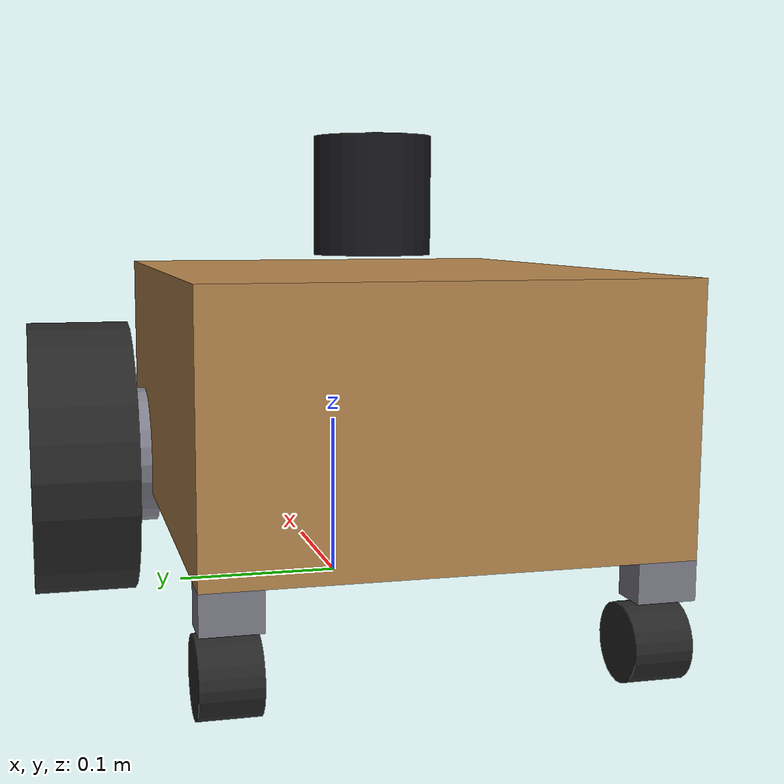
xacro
<?xml version="1.0"?>
<robot xmlns:xacro="http://www.ros.org/wiki/xacro" name="robo3">

  <xacro:arg name="sim" default="false"/>
  <xacro:arg name="controllers_yaml" default=""/>

  <!-- ==================== NÚMEROS AJUSTÁVEIS ==================== -->

  <xacro:property name="caixa_x"     value="0.311"/>
  <xacro:property name="caixa_y"     value="0.240"/>
  <!-- 13,5 confirmado em 17-09 (o dono deu "±14" e fechou em 13,5). -->
  <xacro:property name="caixa_z"     value="0.135"/>
  <xacro:property name="altura_solo" value="0.065"/>

  <xacro:property name="roda_raio"      value="0.0825"/>
  <xacro:property name="roda_largura"   value="0.060"/>
  <xacro:property name="roda_cubo"      value="0.015"/>
  <xacro:property name="roda_separacao" value="0.320"/>

  <xacro:property name="caixa_cx" value="${roda_raio - 0.020 - caixa_x/2}"/>

  <xacro:property name="boba_raio"  value="0.020"/>
  <xacro:property name="boba_trail" value="0.020"/>
  <xacro:property name="boba_largura" value="0.03"/>
  <xacro:property name="boba_x"     value="${caixa_cx - caixa_x/2}"/>
  <xacro:property name="boba_y"     value="${caixa_y/2 - boba_largura/2}"/>

  <xacro:property name="massa_chassi" value="3.0"/>
  <xacro:property name="massa_roda"   value="3.1"/>
  <xacro:property name="massa_garfo"  value="0.05"/>
  <xacro:property name="massa_boba"   value="0.05"/>

  <xacro:property name="boba_pivo_atrito"    value="0.05"/>
  <xacro:property name="boba_pivo_damping"   value="0.02"/>

  <xacro:property name="livox_z_solo" value="0.24"/>
  <xacro:property name="livox_x"      value="${caixa_cx}"/>
  <xacro:property name="livox_yaw"    value="0.0"/>

  <!-- ==================== DERIVADOS (não editar) ==================== -->
  <xacro:property name="caixa_cz"    value="${altura_solo + caixa_z/2}"/>
  <xacro:property name="boba_pivo_z" value="${altura_solo}"/>
  <xacro:property name="livox_z"     value="${livox_z_solo}"/>

  <xacro:macro name="inercia_caixa" params="m x y z ox:=0 oy:=0 oz:=0">
    <inertial>
      <origin xyz="${ox} ${oy} ${oz}"/>
      <mass value="${m}"/>
      <inertia ixx="${m*(y*y+z*z)/12}" iyy="${m*(x*x+z*z)/12}" izz="${m*(x*x+y*y)/12}"
               ixy="0" ixz="0" iyz="0"/>
    </inertial>
  </xacro:macro>

  <xacro:macro name="inercia_roda" params="m r h">
    <inertial>
      <mass value="${m}"/>
      <inertia ixx="${m*(3*r*r+h*h)/12}" iyy="${m*r*r/2}" izz="${m*(3*r*r+h*h)/12}"
               ixy="0" ixz="0" iyz="0"/>
    </inertial>
  </xacro:macro>

  <!-- ==================== CHASSI ====================
       A caixa não está centrada na origem: ela fica ADIANTE do eixo, porque a
       origem é o eixo (C8). `caixa_cx` = +0,093. -->

  <link name="base_link">
    <visual>
      <origin xyz="${caixa_cx} 0 ${caixa_cz}"/>
      <geometry><box size="${caixa_x} ${caixa_y} ${caixa_z}"/></geometry>
      <material name="madeira"><color rgba="0.72 0.53 0.30 1"/></material>
    </visual>
    <collision>
      <origin xyz="${caixa_cx} 0 ${caixa_cz}"/>
      <geometry><box size="${caixa_x} ${caixa_y} ${caixa_z}"/></geometry>
    </collision>
    <xacro:inercia_caixa m="${massa_chassi}" x="${caixa_x}" y="${caixa_y}" z="${caixa_z}"
                         ox="${caixa_cx}" oz="${caixa_cz}"/>
  </link>

  <xacro:macro name="roda_motriz" params="lado reflect">
    <link name="${lado}_wheel">
      <visual>
        <origin rpy="${pi/2} 0 0"/>
        <geometry><cylinder radius="${roda_raio}" length="${roda_largura}"/></geometry>
        <material name="borracha"><color rgba="0.15 0.15 0.15 1"/></material>
      </visual>
      <collision>
        <origin rpy="${pi/2} 0 0"/>
        <geometry><cylinder radius="${roda_raio}" length="${roda_largura}"/></geometry>
      </collision>
      <!-- O cubo: liga a roda à lateral da caixa. Só visual — quem toca o chão
           é o pneu, e dar colisão a ele criaria contato lateral que não existe. -->
      <visual>
        <origin xyz="0 ${-reflect*(roda_largura+roda_cubo)/2} 0" rpy="${pi/2} 0 0"/>
        <geometry><cylinder radius="${roda_raio/2}" length="${roda_cubo}"/></geometry>
        <material name="metal"><color rgba="0.5 0.5 0.55 1"/></material>
      </visual>
      <xacro:inercia_roda m="${massa_roda}" r="${roda_raio}" h="${roda_largura}"/>
    </link>

    <joint name="${lado}_wheel_joint" type="continuous">
      <parent link="base_link"/>
      <child link="${lado}_wheel"/>
      <origin xyz="0 ${reflect*roda_separacao/2} ${roda_raio}"/>
      <axis xyz="0 1 0"/>
    </joint>
  </xacro:macro>

  <xacro:roda_motriz lado="left"  reflect="1"/>
  <xacro:roda_motriz lado="right" reflect="-1"/>

  <xacro:macro name="roda_boba" params="lado reflect">
    <link name="${lado}_caster_fork">
      <visual>
        <origin xyz="${boba_trail/2} 0 ${-boba_raio/2}"/>
        <geometry><box size="${boba_trail} ${boba_largura} ${boba_raio}"/></geometry>
        <material name="metal"><color rgba="0.5 0.5 0.55 1"/></material>
      </visual>
      <xacro:inercia_caixa m="${massa_garfo}" x="${boba_trail}" y="${boba_largura}" z="${boba_raio}"
                           ox="${boba_trail/2}" oz="${-boba_raio/2}"/>
    </link>

    <joint name="${lado}_caster_swivel_joint" type="continuous">
      <parent link="base_link"/>
      <child link="${lado}_caster_fork"/>
      <origin xyz="${boba_x} ${reflect*boba_y} ${boba_pivo_z}"/>
      <axis xyz="0 0 1"/>
      <dynamics damping="${boba_pivo_damping}" friction="${boba_pivo_atrito}"/>
    </joint>

    <link name="${lado}_caster_wheel">
      <visual>
        <origin rpy="${pi/2} 0 0"/>
        <geometry><cylinder radius="${boba_raio}" length="${boba_largura}"/></geometry>
        <material name="borracha"><color rgba="0.15 0.15 0.15 1"/></material>
      </visual>
      <collision>
        <origin rpy="${pi/2} 0 0"/>
        <geometry><cylinder radius="${boba_raio}" length="${boba_largura}"/></geometry>
      </collision>
      <xacro:inercia_roda m="${massa_boba}" r="${boba_raio}" h="${boba_largura}"/>
    </link>

    <joint name="${lado}_caster_wheel_joint" type="continuous">
      <parent link="${lado}_caster_fork"/>
      <child link="${lado}_caster_wheel"/>
      <origin xyz="${boba_trail} 0 ${-(boba_pivo_z - boba_raio)}"/>
      <axis xyz="0 1 0"/>
    </joint>
  </xacro:macro>

  <xacro:roda_boba lado="left"  reflect="1"/>
  <xacro:roda_boba lado="right" reflect="-1"/>

  <!-- ==================== Livox Mid-360 ==================== -->
  <link name="livox_frame">
    <visual>
      <geometry><cylinder radius="0.0325" length="0.065"/></geometry>
      <material name="livox_preto"><color rgba="0.10 0.10 0.12 1"/></material>
    </visual>
    <xacro:inercia_roda m="0.265" r="0.0325" h="0.065"/>
  </link>

  <joint name="livox_joint" type="fixed">
    <parent link="base_link"/>
    <child link="livox_frame"/>
    <origin xyz="${livox_x} 0 ${livox_z}" rpy="0 0 ${livox_yaw}"/>
  </joint>

  <!-- ==================== ros2_control ==================== -->

  <xacro:if value="$(arg sim)">
    <ros2_control name="GazeboSimSystem" type="system">
      <hardware>
        <plugin>gz_ros2_control/GazeboSimSystem</plugin>
      </hardware>
      <joint name="left_wheel_joint">
        <command_interface name="velocity"/>
        <state_interface name="position"/>
        <state_interface name="velocity"/>
      </joint>
      <joint name="right_wheel_joint">
        <command_interface name="velocity"/>
        <state_interface name="position"/>
        <state_interface name="velocity"/>
      </joint>
    </ros2_control>
  </xacro:if>

  <xacro:unless value="$(arg sim)">
    <ros2_control name="HoverboardSystem" type="system">
      <hardware>
        <plugin>hoverboard_driver/hoverboard_driver</plugin>
        <param name="wheel_radius">${roda_raio}</param>
        <param name="max_velocity">1.0</param>
        <param name="device">/dev/ttyUSB0</param>
        <param name="feedback_sign_left">1.0</param>
        <param name="feedback_sign_right">-1.0</param>
        <param name="deadband_enable">true</param>
        <param name="deadband_speed">100.0</param>
      </hardware>
      <joint name="left_wheel_joint">
        <command_interface name="velocity"/>
        <state_interface name="position"/>
        <state_interface name="velocity"/>
      </joint>
      <joint name="right_wheel_joint">
        <command_interface name="velocity"/>
        <state_interface name="position"/>
        <state_interface name="velocity"/>
      </joint>
    </ros2_control>
  </xacro:unless>

  <xacro:if value="$(arg sim)">
    <xacro:include filename="$(find robot_base)/description/robo3.gazebo.xacro"/>
  </xacro:if>

</robot>
